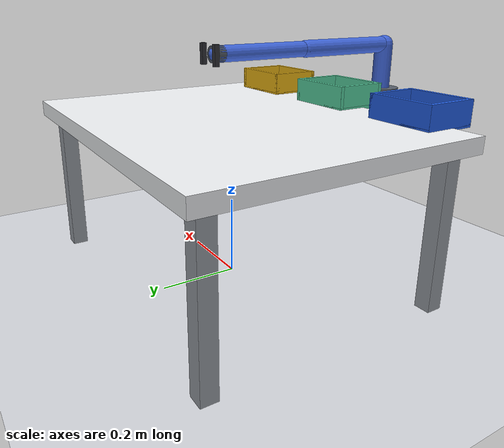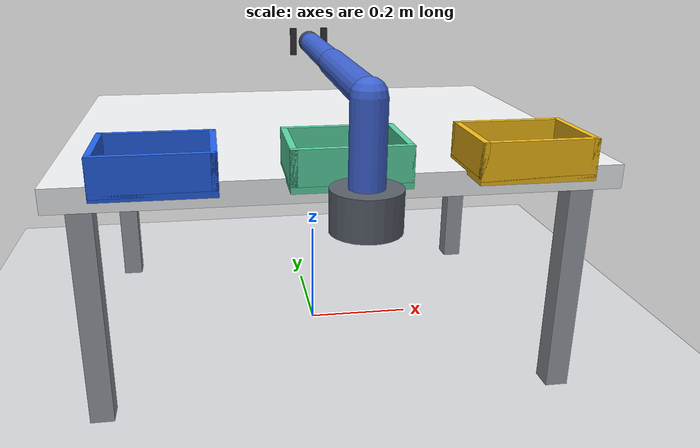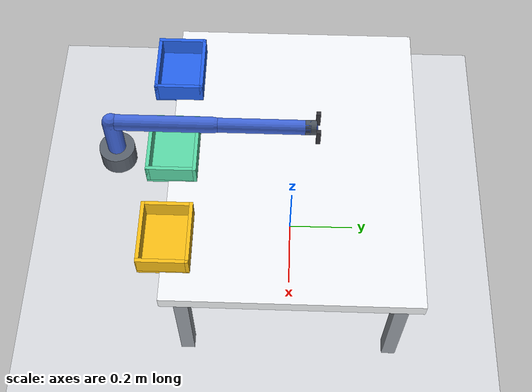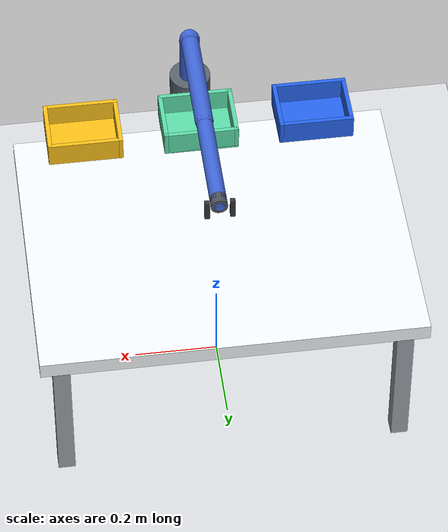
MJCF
<?xml version="1.0" encoding="utf-8"?>
<mujoco model="industrial_sorting_poc">
  <compiler angle="radian" autolimits="true"/>
  <option timestep="0.005" gravity="0 0 -9.81" integrator="implicitfast"/>

  <visual>
    <global offwidth="640" offheight="480"/>
    <quality shadowsize="2048"/>
    <headlight ambient="0.4 0.4 0.4" diffuse="0.6 0.6 0.6" specular="0.1 0.1 0.1"/>
  </visual>

  <default>
    <!-- 默认几何体属性：适度摩擦，便于“抓取”示意。 -->
    <geom friction="1.0 0.05 0.001" density="800"/>
    <joint damping="1.0"/>
    <default class="arm_link">
      <geom type="capsule" rgba="0.25 0.40 0.85 1"/>
    </default>
    <default class="gripper">
      <geom type="box" rgba="0.20 0.20 0.22 1"/>
    </default>
  </default>

  <asset>
    <!-- 棋盘纹理地板，便于离屏渲染时有空间参照。 -->
    <texture name="grid" type="2d" builtin="checker" rgb1="0.9 0.9 0.9"
             rgb2="0.78 0.80 0.84" width="300" height="300"/>
    <material name="grid_mat" texture="grid" texrepeat="8 8" reflectance="0.1"/>
    <material name="table_mat" rgba="0.95 0.96 0.97 1"/>
    <material name="binA_mat" rgba="0.145 0.388 0.922 1"/> <!-- A 区 #2563EB -->
    <material name="binB_mat" rgba="0.353 0.847 0.651 1"/> <!-- B 区 #5AD8A6 -->
    <material name="binC_mat" rgba="0.965 0.741 0.086 1"/> <!-- C 区 #F6BD16 -->
  </asset>

  <worldbody>
    <!-- 全局光源 -->
    <light name="top_light" pos="0 0 2.0" dir="0 0 -1" diffuse="0.7 0.7 0.7"/>
    <light name="side_light" pos="0.8 -0.8 1.2" dir="-0.6 0.6 -0.8"
           diffuse="0.4 0.4 0.4"/>

    <!-- 地板 -->
    <geom name="floor" type="plane" size="3 3 0.1" material="grid_mat"
          pos="0 0 0"/>

    <!-- 工作台（一块抬高的平板，零件散落其上） -->
    <body name="table" pos="0 0 0.40">
      <geom name="table_top" type="box" size="0.45 0.35 0.02"
            material="table_mat"/>
      <!-- 四条桌腿（示意） -->
      <geom name="leg1" type="box" size="0.02 0.02 0.20" pos="0.40 0.30 -0.22"
            rgba="0.6 0.62 0.65 1"/>
      <geom name="leg2" type="box" size="0.02 0.02 0.20" pos="-0.40 0.30 -0.22"
            rgba="0.6 0.62 0.65 1"/>
      <geom name="leg3" type="box" size="0.02 0.02 0.20" pos="0.40 -0.30 -0.22"
            rgba="0.6 0.62 0.65 1"/>
      <geom name="leg4" type="box" size="0.02 0.02 0.20" pos="-0.40 -0.30 -0.22"
            rgba="0.6 0.62 0.65 1"/>
    </body>

    <!-- 三个分拣料盒（A 左 / B 中 / C 右），在工作台前方（-y）一字排开。
         用一个底板 + 四壁的开口盒子近似。这里简化为“底板 + 描边”示意。 -->
    <body name="bin_A" pos="-0.28 -0.34 0.42">
      <geom name="binA_floor" type="box" size="0.09 0.07 0.005"
            material="binA_mat"/>
      <geom name="binA_w1" type="box" size="0.09 0.005 0.03" pos="0 0.065 0.03"
            material="binA_mat"/>
      <geom name="binA_w2" type="box" size="0.09 0.005 0.03" pos="0 -0.065 0.03"
            material="binA_mat"/>
      <geom name="binA_w3" type="box" size="0.005 0.07 0.03" pos="0.085 0 0.03"
            material="binA_mat"/>
      <geom name="binA_w4" type="box" size="0.005 0.07 0.03" pos="-0.085 0 0.03"
            material="binA_mat"/>
    </body>
    <body name="bin_B" pos="0.0 -0.34 0.42">
      <geom name="binB_floor" type="box" size="0.09 0.07 0.005"
            material="binB_mat"/>
      <geom name="binB_w1" type="box" size="0.09 0.005 0.03" pos="0 0.065 0.03"
            material="binB_mat"/>
      <geom name="binB_w2" type="box" size="0.09 0.005 0.03" pos="0 -0.065 0.03"
            material="binB_mat"/>
      <geom name="binB_w3" type="box" size="0.005 0.07 0.03" pos="0.085 0 0.03"
            material="binB_mat"/>
      <geom name="binB_w4" type="box" size="0.005 0.07 0.03" pos="-0.085 0 0.03"
            material="binB_mat"/>
    </body>
    <body name="bin_C" pos="0.28 -0.34 0.42">
      <geom name="binC_floor" type="box" size="0.09 0.07 0.005"
            material="binC_mat"/>
      <geom name="binC_w1" type="box" size="0.09 0.005 0.03" pos="0 0.065 0.03"
            material="binC_mat"/>
      <geom name="binC_w2" type="box" size="0.09 0.005 0.03" pos="0 -0.065 0.03"
            material="binC_mat"/>
      <geom name="binC_w3" type="box" size="0.005 0.07 0.03" pos="0.085 0 0.03"
            material="binC_mat"/>
      <geom name="binC_w4" type="box" size="0.005 0.07 0.03" pos="-0.085 0 0.03"
            material="binC_mat"/>
    </body>

    <!-- 简化机械臂（UR5e 近似）：基座固定在工作台后方（-y），3 个 hinge 关节
         构成肩/肘/腕的平面臂，末端挂二指夹爪。关节命名便于日后接执行器。 -->
    <body name="arm_base" pos="0.0 -0.50 0.42">
      <geom name="base_geom" type="cylinder" size="0.05 0.03"
            rgba="0.35 0.38 0.42 1"/>
      <!-- 关节1：肩部（绕 z 转，水平摆动） -->
      <body name="link1" pos="0 0 0.03">
        <joint name="shoulder_pan" type="hinge" axis="0 0 1"
               range="-3.14159 3.14159"/>
        <geom class="arm_link" name="link1_geom" fromto="0 0 0 0 0 0.12"
              size="0.025"/>
        <!-- 关节2：大臂抬升（绕 x 转） -->
        <body name="link2" pos="0 0 0.12">
          <joint name="shoulder_lift" type="hinge" axis="1 0 0"
                 range="-2.0 2.0"/>
          <geom class="arm_link" name="link2_geom" fromto="0 0 0 0 0.28 0"
                size="0.022"/>
          <!-- 关节3：小臂（绕 x 转） -->
          <body name="link3" pos="0 0.28 0">
            <joint name="elbow" type="hinge" axis="1 0 0" range="-2.6 2.6"/>
            <geom class="arm_link" name="link3_geom" fromto="0 0 0 0 0.26 0"
                  size="0.020"/>
            <!-- 腕部 + 二指夹爪 -->
            <body name="wrist" pos="0 0.26 0">
              <geom name="wrist_geom" type="cylinder" size="0.02 0.015"
                    quat="0.707 0.707 0 0" rgba="0.30 0.33 0.37 1"/>
              <!-- 左指：可沿 y 平移开合 -->
              <body name="finger_left" pos="-0.03 0.02 0">
                <joint name="gripper_left" type="slide" axis="1 0 0"
                       range="-0.03 0.0"/>
                <geom class="gripper" name="finger_left_geom"
                      size="0.006 0.006 0.025"/>
              </body>
              <!-- 右指：与左指对称开合 -->
              <body name="finger_right" pos="0.03 0.02 0">
                <joint name="gripper_right" type="slide" axis="1 0 0"
                       range="0.0 0.03"/>
                <geom class="gripper" name="finger_right_geom"
                      size="0.006 0.006 0.025"/>
              </body>
            </body>
          </body>
        </body>
      </body>
    </body>

    <!-- 离屏渲染相机：俯视（top）与侧视（side），供 env 的 MuJoCo 离屏渲染。 -->
    <camera name="top" pos="0 -0.10 1.30" euler="0 0 0"/>
    <camera name="side" pos="0.0 -1.10 0.85" xyaxes="1 0 0 0 0.5 0.9"/>
  </worldbody>

  <!-- 执行器：为每个关节配位置伺服，便于日后用关节角驱动（POC 中可不消费）。 -->
  <actuator>
    <position name="act_shoulder_pan" joint="shoulder_pan" kp="50"/>
    <position name="act_shoulder_lift" joint="shoulder_lift" kp="50"/>
    <position name="act_elbow" joint="elbow" kp="50"/>
    <position name="act_gripper_left" joint="gripper_left" kp="20"/>
    <position name="act_gripper_right" joint="gripper_right" kp="20"/>
  </actuator>
</mujoco>
